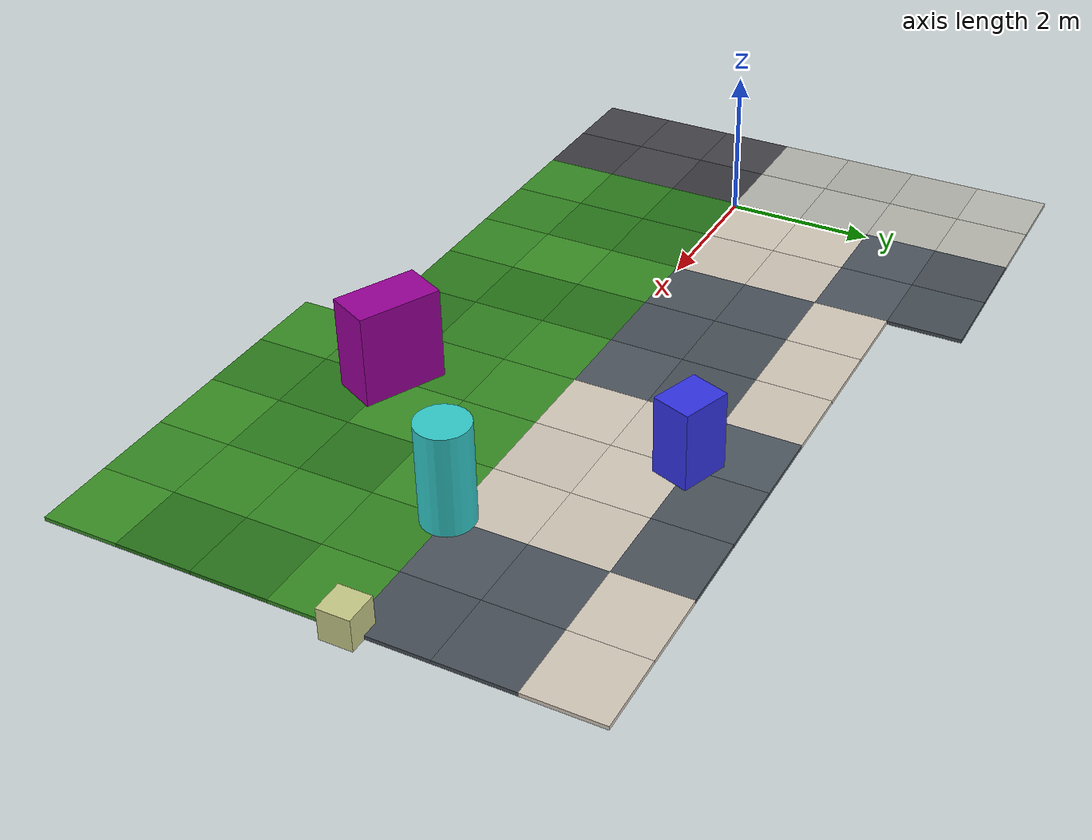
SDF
<sdf version="1.9">
 <world name="competition_world">
  <model name="t_06_15">
   <static>true</static>
   <pose>5.500 -3.500 0.025 0 0 0</pose>
   <link name="link">
    <collision name="c"><geometry><box><size>1.00 1.00 0.05</size></box></geometry></collision>
    <visual name="v">
     <geometry><box><size>1.00 1.00 0.05</size></box></geometry>
     <material>
      <ambient>0.219 0.553 0.143 1</ambient>
      <diffuse>0.219 0.553 0.143 1</diffuse>
      <specular>0.060 0.060 0.060 1</specular>
     </material>
    </visual>
   </link>
  </model>
  <model name="t_06_16">
   <static>true</static>
   <pose>6.500 -3.500 0.025 0 0 0</pose>
   <link name="link">
    <collision name="c"><geometry><box><size>1.00 1.00 0.05</size></box></geometry></collision>
    <visual name="v">
     <geometry><box><size>1.00 1.00 0.05</size></box></geometry>
     <material>
      <ambient>0.176 0.489 0.116 1</ambient>
      <diffuse>0.176 0.489 0.116 1</diffuse>
      <specular>0.060 0.060 0.060 1</specular>
     </material>
    </visual>
   </link>
  </model>
  <model name="t_06_17">
   <static>true</static>
   <pose>7.500 -3.500 0.025 0 0 0</pose>
   <link name="link">
    <collision name="c"><geometry><box><size>1.00 1.00 0.05</size></box></geometry></collision>
    <visual name="v">
     <geometry><box><size>1.00 1.00 0.05</size></box></geometry>
     <material>
      <ambient>0.223 0.560 0.146 1</ambient>
      <diffuse>0.223 0.560 0.146 1</diffuse>
      <specular>0.060 0.060 0.060 1</specular>
     </material>
    </visual>
   </link>
  </model>
  <model name="t_06_18">
   <static>true</static>
   <pose>8.500 -3.500 0.025 0 0 0</pose>
   <link name="link">
    <collision name="c"><geometry><box><size>1.00 1.00 0.05</size></box></geometry></collision>
    <visual name="v">
     <geometry><box><size>1.00 1.00 0.05</size></box></geometry>
     <material>
      <ambient>0.212 0.543 0.139 1</ambient>
      <diffuse>0.212 0.543 0.139 1</diffuse>
      <specular>0.060 0.060 0.060 1</specular>
     </material>
    </visual>
   </link>
  </model>
  <model name="t_06_19">
   <static>true</static>
   <pose>9.500 -3.500 0.025 0 0 0</pose>
   <link name="link">
    <collision name="c"><geometry><box><size>1.00 1.00 0.05</size></box></geometry></collision>
    <visual name="v">
     <geometry><box><size>1.00 1.00 0.05</size></box></geometry>
     <material>
      <ambient>0.228 0.566 0.149 1</ambient>
      <diffuse>0.228 0.566 0.149 1</diffuse>
      <specular>0.060 0.060 0.060 1</specular>
     </material>
    </visual>
   </link>
  </model>
  <model name="t_07_08">
   <static>true</static>
   <pose>-1.500 -2.500 0.025 0 0 0</pose>
   <link name="link">
    <collision name="c"><geometry><box><size>1.00 1.00 0.05</size></box></geometry></collision>
    <visual name="v">
     <geometry><box><size>1.00 1.00 0.05</size></box></geometry>
     <material>
      <ambient>0.260 0.260 0.280 1</ambient>
      <diffuse>0.260 0.260 0.280 1</diffuse>
      <specular>0.060 0.060 0.060 1</specular>
     </material>
    </visual>
   </link>
  </model>
  <model name="t_07_09">
   <static>true</static>
   <pose>-0.500 -2.500 0.025 0 0 0</pose>
   <link name="link">
    <collision name="c"><geometry><box><size>1.00 1.00 0.05</size></box></geometry></collision>
    <visual name="v">
     <geometry><box><size>1.00 1.00 0.05</size></box></geometry>
     <material>
      <ambient>0.239 0.239 0.259 1</ambient>
      <diffuse>0.239 0.239 0.259 1</diffuse>
      <specular>0.060 0.060 0.060 1</specular>
     </material>
    </visual>
   </link>
  </model>
  <model name="t_07_10">
   <static>true</static>
   <pose>0.500 -2.500 0.025 0 0 0</pose>
   <link name="link">
    <collision name="c"><geometry><box><size>1.00 1.00 0.05</size></box></geometry></collision>
    <visual name="v">
     <geometry><box><size>1.00 1.00 0.05</size></box></geometry>
     <material>
      <ambient>0.210 0.540 0.137 1</ambient>
      <diffuse>0.210 0.540 0.137 1</diffuse>
      <specular>0.060 0.060 0.060 1</specular>
     </material>
    </visual>
   </link>
  </model>
  <model name="t_07_11">
   <static>true</static>
   <pose>1.500 -2.500 0.025 0 0 0</pose>
   <link name="link">
    <collision name="c"><geometry><box><size>1.00 1.00 0.05</size></box></geometry></collision>
    <visual name="v">
     <geometry><box><size>1.00 1.00 0.05</size></box></geometry>
     <material>
      <ambient>0.195 0.517 0.128 1</ambient>
      <diffuse>0.195 0.517 0.128 1</diffuse>
      <specular>0.060 0.060 0.060 1</specular>
     </material>
    </visual>
   </link>
  </model>
  <model name="t_07_12">
   <static>true</static>
   <pose>2.500 -2.500 0.025 0 0 0</pose>
   <link name="link">
    <collision name="c"><geometry><box><size>1.00 1.00 0.05</size></box></geometry></collision>
    <visual name="v">
     <geometry><box><size>1.00 1.00 0.05</size></box></geometry>
     <material>
      <ambient>0.207 0.535 0.135 1</ambient>
      <diffuse>0.207 0.535 0.135 1</diffuse>
      <specular>0.060 0.060 0.060 1</specular>
     </material>
    </visual>
   </link>
  </model>
  <model name="t_07_13">
   <static>true</static>
   <pose>3.500 -2.500 0.025 0 0 0</pose>
   <link name="link">
    <collision name="c"><geometry><box><size>1.00 1.00 0.05</size></box></geometry></collision>
    <visual name="v">
     <geometry><box><size>1.00 1.00 0.05</size></box></geometry>
     <material>
      <ambient>0.175 0.487 0.115 1</ambient>
      <diffuse>0.175 0.487 0.115 1</diffuse>
      <specular>0.060 0.060 0.060 1</specular>
     </material>
    </visual>
   </link>
  </model>
  <model name="t_07_14">
   <static>true</static>
   <pose>4.500 -2.500 0.025 0 0 0</pose>
   <link name="link">
    <collision name="c"><geometry><box><size>1.00 1.00 0.05</size></box></geometry></collision>
    <visual name="v">
     <geometry><box><size>1.00 1.00 0.05</size></box></geometry>
     <material>
      <ambient>0.156 0.459 0.104 1</ambient>
      <diffuse>0.156 0.459 0.104 1</diffuse>
      <specular>0.060 0.060 0.060 1</specular>
     </material>
    </visual>
   </link>
  </model>
  <model name="t_07_15">
   <static>true</static>
   <pose>5.500 -2.500 0.025 0 0 0</pose>
   <link name="link">
    <collision name="c"><geometry><box><size>1.00 1.00 0.05</size></box></geometry></collision>
    <visual name="v">
     <geometry><box><size>1.00 1.00 0.05</size></box></geometry>
     <material>
      <ambient>0.204 0.531 0.134 1</ambient>
      <diffuse>0.204 0.531 0.134 1</diffuse>
      <specular>0.060 0.060 0.060 1</specular>
     </material>
    </visual>
   </link>
  </model>
  <model name="t_07_16">
   <static>true</static>
   <pose>6.500 -2.500 0.025 0 0 0</pose>
   <link name="link">
    <collision name="c"><geometry><box><size>1.00 1.00 0.05</size></box></geometry></collision>
    <visual name="v">
     <geometry><box><size>1.00 1.00 0.05</size></box></geometry>
     <material>
      <ambient>0.162 0.467 0.107 1</ambient>
      <diffuse>0.162 0.467 0.107 1</diffuse>
      <specular>0.060 0.060 0.060 1</specular>
     </material>
    </visual>
   </link>
  </model>
  <model name="t_07_17">
   <static>true</static>
   <pose>7.500 -2.500 0.025 0 0 0</pose>
   <link name="link">
    <collision name="c"><geometry><box><size>1.00 1.00 0.05</size></box></geometry></collision>
    <visual name="v">
     <geometry><box><size>1.00 1.00 0.05</size></box></geometry>
     <material>
      <ambient>0.179 0.493 0.118 1</ambient>
      <diffuse>0.179 0.493 0.118 1</diffuse>
      <specular>0.060 0.060 0.060 1</specular>
     </material>
    </visual>
   </link>
  </model>
  <model name="t_07_18">
   <static>true</static>
   <pose>8.500 -2.500 0.025 0 0 0</pose>
   <link name="link">
    <collision name="c"><geometry><box><size>1.00 1.00 0.05</size></box></geometry></collision>
    <visual name="v">
     <geometry><box><size>1.00 1.00 0.05</size></box></geometry>
     <material>
      <ambient>0.213 0.544 0.139 1</ambient>
      <diffuse>0.213 0.544 0.139 1</diffuse>
      <specular>0.060 0.060 0.060 1</specular>
     </material>
    </visual>
   </link>
  </model>
  <model name="t_07_19">
   <static>true</static>
   <pose>9.500 -2.500 0.025 0 0 0</pose>
   <link name="link">
    <collision name="c"><geometry><box><size>1.00 1.00 0.05</size></box></geometry></collision>
    <visual name="v">
     <geometry><box><size>1.00 1.00 0.05</size></box></geometry>
     <material>
      <ambient>0.154 0.456 0.102 1</ambient>
      <diffuse>0.154 0.456 0.102 1</diffuse>
      <specular>0.060 0.060 0.060 1</specular>
     </material>
    </visual>
   </link>
  </model>
  <model name="t_08_08">
   <static>true</static>
   <pose>-1.500 -1.500 0.025 0 0 0</pose>
   <link name="link">
    <collision name="c"><geometry><box><size>1.00 1.00 0.05</size></box></geometry></collision>
    <visual name="v">
     <geometry><box><size>1.00 1.00 0.05</size></box></geometry>
     <material>
      <ambient>0.260 0.260 0.280 1</ambient>
      <diffuse>0.260 0.260 0.280 1</diffuse>
      <specular>0.060 0.060 0.060 1</specular>
     </material>
    </visual>
   </link>
  </model>
  <model name="t_08_09">
   <static>true</static>
   <pose>-0.500 -1.500 0.025 0 0 0</pose>
   <link name="link">
    <collision name="c"><geometry><box><size>1.00 1.00 0.05</size></box></geometry></collision>
    <visual name="v">
     <geometry><box><size>1.00 1.00 0.05</size></box></geometry>
     <material>
      <ambient>0.260 0.260 0.280 1</ambient>
      <diffuse>0.260 0.260 0.280 1</diffuse>
      <specular>0.060 0.060 0.060 1</specular>
     </material>
    </visual>
   </link>
  </model>
  <model name="t_08_10">
   <static>true</static>
   <pose>0.500 -1.500 0.025 0 0 0</pose>
   <link name="link">
    <collision name="c"><geometry><box><size>1.00 1.00 0.05</size></box></geometry></collision>
    <visual name="v">
     <geometry><box><size>1.00 1.00 0.05</size></box></geometry>
     <material>
      <ambient>0.172 0.483 0.114 1</ambient>
      <diffuse>0.172 0.483 0.114 1</diffuse>
      <specular>0.060 0.060 0.060 1</specular>
     </material>
    </visual>
   </link>
  </model>
  <model name="t_08_11">
   <static>true</static>
   <pose>1.500 -1.500 0.025 0 0 0</pose>
   <link name="link">
    <collision name="c"><geometry><box><size>1.00 1.00 0.05</size></box></geometry></collision>
    <visual name="v">
     <geometry><box><size>1.00 1.00 0.05</size></box></geometry>
     <material>
      <ambient>0.163 0.469 0.108 1</ambient>
      <diffuse>0.163 0.469 0.108 1</diffuse>
      <specular>0.060 0.060 0.060 1</specular>
     </material>
    </visual>
   </link>
  </model>
  <model name="t_08_12">
   <static>true</static>
   <pose>2.500 -1.500 0.025 0 0 0</pose>
   <link name="link">
    <collision name="c"><geometry><box><size>1.00 1.00 0.05</size></box></geometry></collision>
    <visual name="v">
     <geometry><box><size>1.00 1.00 0.05</size></box></geometry>
     <material>
      <ambient>0.228 0.566 0.148 1</ambient>
      <diffuse>0.228 0.566 0.148 1</diffuse>
      <specular>0.060 0.060 0.060 1</specular>
     </material>
    </visual>
   </link>
  </model>
  <model name="t_08_13">
   <static>true</static>
   <pose>3.500 -1.500 0.025 0 0 0</pose>
   <link name="link">
    <collision name="c"><geometry><box><size>1.00 1.00 0.05</size></box></geometry></collision>
    <visual name="v">
     <geometry><box><size>1.00 1.00 0.05</size></box></geometry>
     <material>
      <ambient>0.155 0.457 0.103 1</ambient>
      <diffuse>0.155 0.457 0.103 1</diffuse>
      <specular>0.060 0.060 0.060 1</specular>
     </material>
    </visual>
   </link>
  </model>
  <model name="t_08_14">
   <static>true</static>
   <pose>4.500 -1.500 0.025 0 0 0</pose>
   <link name="link">
    <collision name="c"><geometry><box><size>1.00 1.00 0.05</size></box></geometry></collision>
    <visual name="v">
     <geometry><box><size>1.00 1.00 0.05</size></box></geometry>
     <material>
      <ambient>0.191 0.512 0.126 1</ambient>
      <diffuse>0.191 0.512 0.126 1</diffuse>
      <specular>0.060 0.060 0.060 1</specular>
     </material>
    </visual>
   </link>
  </model>
  <model name="t_08_15">
   <static>true</static>
   <pose>5.500 -1.500 0.025 0 0 0</pose>
   <link name="link">
    <collision name="c"><geometry><box><size>1.00 1.00 0.05</size></box></geometry></collision>
    <visual name="v">
     <geometry><box><size>1.00 1.00 0.05</size></box></geometry>
     <material>
      <ambient>0.200 0.525 0.131 1</ambient>
      <diffuse>0.200 0.525 0.131 1</diffuse>
      <specular>0.060 0.060 0.060 1</specular>
     </material>
    </visual>
   </link>
  </model>
  <model name="t_08_16">
   <static>true</static>
   <pose>6.500 -1.500 0.025 0 0 0</pose>
   <link name="link">
    <collision name="c"><geometry><box><size>1.00 1.00 0.05</size></box></geometry></collision>
    <visual name="v">
     <geometry><box><size>1.00 1.00 0.05</size></box></geometry>
     <material>
      <ambient>0.226 0.565 0.148 1</ambient>
      <diffuse>0.226 0.565 0.148 1</diffuse>
      <specular>0.060 0.060 0.060 1</specular>
     </material>
    </visual>
   </link>
  </model>
  <model name="t_08_17">
   <static>true</static>
   <pose>7.500 -1.500 0.025 0 0 0</pose>
   <link name="link">
    <collision name="c"><geometry><box><size>1.00 1.00 0.05</size></box></geometry></collision>
    <visual name="v">
     <geometry><box><size>1.00 1.00 0.05</size></box></geometry>
     <material>
      <ambient>0.157 0.460 0.104 1</ambient>
      <diffuse>0.157 0.460 0.104 1</diffuse>
      <specular>0.060 0.060 0.060 1</specular>
     </material>
    </visual>
   </link>
  </model>
  <model name="t_08_18">
   <static>true</static>
   <pose>8.500 -1.500 0.025 0 0 0</pose>
   <link name="link">
    <collision name="c"><geometry><box><size>1.00 1.00 0.05</size></box></geometry></collision>
    <visual name="v">
     <geometry><box><size>1.00 1.00 0.05</size></box></geometry>
     <material>
      <ambient>0.206 0.534 0.135 1</ambient>
      <diffuse>0.206 0.534 0.135 1</diffuse>
      <specular>0.060 0.060 0.060 1</specular>
     </material>
    </visual>
   </link>
  </model>
  <model name="t_08_19">
   <static>true</static>
   <pose>9.500 -1.500 0.025 0 0 0</pose>
   <link name="link">
    <collision name="c"><geometry><box><size>1.00 1.00 0.05</size></box></geometry></collision>
    <visual name="v">
     <geometry><box><size>1.00 1.00 0.05</size></box></geometry>
     <material>
      <ambient>0.156 0.459 0.104 1</ambient>
      <diffuse>0.156 0.459 0.104 1</diffuse>
      <specular>0.060 0.060 0.060 1</specular>
     </material>
    </visual>
   </link>
  </model>
  <model name="t_09_08">
   <static>true</static>
   <pose>-1.500 -0.500 0.025 0 0 0</pose>
   <link name="link">
    <collision name="c"><geometry><box><size>1.00 1.00 0.05</size></box></geometry></collision>
    <visual name="v">
     <geometry><box><size>1.00 1.00 0.05</size></box></geometry>
     <material>
      <ambient>0.260 0.260 0.280 1</ambient>
      <diffuse>0.260 0.260 0.280 1</diffuse>
      <specular>0.060 0.060 0.060 1</specular>
     </material>
    </visual>
   </link>
  </model>
  <model name="t_09_09">
   <static>true</static>
   <pose>-0.500 -0.500 0.025 0 0 0</pose>
   <link name="link">
    <collision name="c"><geometry><box><size>1.00 1.00 0.05</size></box></geometry></collision>
    <visual name="v">
     <geometry><box><size>1.00 1.00 0.05</size></box></geometry>
     <material>
      <ambient>0.224 0.224 0.244 1</ambient>
      <diffuse>0.224 0.224 0.244 1</diffuse>
      <specular>0.060 0.060 0.060 1</specular>
     </material>
    </visual>
   </link>
  </model>
  <model name="t_09_10">
   <static>true</static>
   <pose>0.500 -0.500 0.025 0 0 0</pose>
   <link name="link">
    <collision name="c"><geometry><box><size>1.00 1.00 0.05</size></box></geometry></collision>
    <visual name="v">
     <geometry><box><size>1.00 1.00 0.05</size></box></geometry>
     <material>
      <ambient>0.150 0.451 0.100 1</ambient>
      <diffuse>0.150 0.451 0.100 1</diffuse>
      <specular>0.060 0.060 0.060 1</specular>
     </material>
    </visual>
   </link>
  </model>
  <model name="t_09_11">
   <static>true</static>
   <pose>1.500 -0.500 0.025 0 0 0</pose>
   <link name="link">
    <collision name="c"><geometry><box><size>1.00 1.00 0.05</size></box></geometry></collision>
    <visual name="v">
     <geometry><box><size>1.00 1.00 0.05</size></box></geometry>
     <material>
      <ambient>0.153 0.454 0.102 1</ambient>
      <diffuse>0.153 0.454 0.102 1</diffuse>
      <specular>0.060 0.060 0.060 1</specular>
     </material>
    </visual>
   </link>
  </model>
  <model name="t_09_12">
   <static>true</static>
   <pose>2.500 -0.500 0.025 0 0 0</pose>
   <link name="link">
    <collision name="c"><geometry><box><size>1.00 1.00 0.05</size></box></geometry></collision>
    <visual name="v">
     <geometry><box><size>1.00 1.00 0.05</size></box></geometry>
     <material>
      <ambient>0.212 0.544 0.139 1</ambient>
      <diffuse>0.212 0.544 0.139 1</diffuse>
      <specular>0.060 0.060 0.060 1</specular>
     </material>
    </visual>
   </link>
  </model>
  <model name="t_09_13">
   <static>true</static>
   <pose>3.500 -0.500 0.025 0 0 0</pose>
   <link name="link">
    <collision name="c"><geometry><box><size>1.00 1.00 0.05</size></box></geometry></collision>
    <visual name="v">
     <geometry><box><size>1.00 1.00 0.05</size></box></geometry>
     <material>
      <ambient>0.153 0.455 0.102 1</ambient>
      <diffuse>0.153 0.455 0.102 1</diffuse>
      <specular>0.060 0.060 0.060 1</specular>
     </material>
    </visual>
   </link>
  </model>
  <model name="t_09_14">
   <static>true</static>
   <pose>4.500 -0.500 0.025 0 0 0</pose>
   <link name="link">
    <collision name="c"><geometry><box><size>1.00 1.00 0.05</size></box></geometry></collision>
    <visual name="v">
     <geometry><box><size>1.00 1.00 0.05</size></box></geometry>
     <material>
      <ambient>0.213 0.544 0.139 1</ambient>
      <diffuse>0.213 0.544 0.139 1</diffuse>
      <specular>0.060 0.060 0.060 1</specular>
     </material>
    </visual>
   </link>
  </model>
  <model name="t_09_15">
   <static>true</static>
   <pose>5.500 -0.500 0.025 0 0 0</pose>
   <link name="link">
    <collision name="c"><geometry><box><size>1.00 1.00 0.05</size></box></geometry></collision>
    <visual name="v">
     <geometry><box><size>1.00 1.00 0.05</size></box></geometry>
     <material>
      <ambient>0.215 0.547 0.140 1</ambient>
      <diffuse>0.215 0.547 0.140 1</diffuse>
      <specular>0.060 0.060 0.060 1</specular>
     </material>
    </visual>
   </link>
  </model>
  <model name="t_09_16">
   <static>true</static>
   <pose>6.500 -0.500 0.025 0 0 0</pose>
   <link name="link">
    <collision name="c"><geometry><box><size>1.00 1.00 0.05</size></box></geometry></collision>
    <visual name="v">
     <geometry><box><size>1.00 1.00 0.05</size></box></geometry>
     <material>
      <ambient>0.215 0.548 0.141 1</ambient>
      <diffuse>0.215 0.548 0.141 1</diffuse>
      <specular>0.060 0.060 0.060 1</specular>
     </material>
    </visual>
   </link>
  </model>
  <model name="t_09_17">
   <static>true</static>
   <pose>7.500 -0.500 0.025 0 0 0</pose>
   <link name="link">
    <collision name="c"><geometry><box><size>1.00 1.00 0.05</size></box></geometry></collision>
    <visual name="v">
     <geometry><box><size>1.00 1.00 0.05</size></box></geometry>
     <material>
      <ambient>0.225 0.562 0.147 1</ambient>
      <diffuse>0.225 0.562 0.147 1</diffuse>
      <specular>0.060 0.060 0.060 1</specular>
     </material>
    </visual>
   </link>
  </model>
  <model name="t_09_18">
   <static>true</static>
   <pose>8.500 -0.500 0.025 0 0 0</pose>
   <link name="link">
    <collision name="c"><geometry><box><size>1.00 1.00 0.05</size></box></geometry></collision>
    <visual name="v">
     <geometry><box><size>1.00 1.00 0.05</size></box></geometry>
     <material>
      <ambient>0.201 0.526 0.132 1</ambient>
      <diffuse>0.201 0.526 0.132 1</diffuse>
      <specular>0.060 0.060 0.060 1</specular>
     </material>
    </visual>
   </link>
  </model>
  <model name="t_09_19">
   <static>true</static>
   <pose>9.500 -0.500 0.025 0 0 0</pose>
   <link name="link">
    <collision name="c"><geometry><box><size>1.00 1.00 0.05</size></box></geometry></collision>
    <visual name="v">
     <geometry><box><size>1.00 1.00 0.05</size></box></geometry>
     <material>
      <ambient>0.216 0.549 0.141 1</ambient>
      <diffuse>0.216 0.549 0.141 1</diffuse>
      <specular>0.060 0.060 0.060 1</specular>
     </material>
    </visual>
   </link>
  </model>
  <model name="t_10_08">
   <static>true</static>
   <pose>-1.500 0.500 0.025 0 0 0</pose>
   <link name="link">
    <collision name="c"><geometry><box><size>1.00 1.00 0.05</size></box></geometry></collision>
    <visual name="v">
     <geometry><box><size>1.00 1.00 0.05</size></box></geometry>
     <material>
      <ambient>0.709 0.709 0.679 1</ambient>
      <diffuse>0.709 0.709 0.679 1</diffuse>
      <specular>0.060 0.060 0.060 1</specular>
     </material>
    </visual>
   </link>
  </model>
  <model name="t_10_09">
   <static>true</static>
   <pose>-0.500 0.500 0.025 0 0 0</pose>
   <link name="link">
    <collision name="c"><geometry><box><size>1.00 1.00 0.05</size></box></geometry></collision>
    <visual name="v">
     <geometry><box><size>1.00 1.00 0.05</size></box></geometry>
     <material>
      <ambient>0.712 0.712 0.682 1</ambient>
      <diffuse>0.712 0.712 0.682 1</diffuse>
      <specular>0.060 0.060 0.060 1</specular>
     </material>
    </visual>
   </link>
  </model>
  <model name="t_10_10">
   <static>true</static>
   <pose>0.500 0.500 0.025 0 0 0</pose>
   <link name="link">
    <collision name="c"><geometry><box><size>1.00 1.00 0.05</size></box></geometry></collision>
    <visual name="v">
     <geometry><box><size>1.00 1.00 0.05</size></box></geometry>
     <material>
      <ambient>0.831 0.789 0.731 1</ambient>
      <diffuse>0.831 0.789 0.731 1</diffuse>
      <specular>0.060 0.060 0.060 1</specular>
     </material>
    </visual>
   </link>
  </model>
  <model name="t_10_11">
   <static>true</static>
   <pose>1.500 0.500 0.025 0 0 0</pose>
   <link name="link">
    <collision name="c"><geometry><box><size>1.00 1.00 0.05</size></box></geometry></collision>
    <visual name="v">
     <geometry><box><size>1.00 1.00 0.05</size></box></geometry>
     <material>
      <ambient>0.813 0.772 0.715 1</ambient>
      <diffuse>0.813 0.772 0.715 1</diffuse>
      <specular>0.060 0.060 0.060 1</specular>
     </material>
    </visual>
   </link>
  </model>
  <model name="t_10_12">
   <static>true</static>
   <pose>2.500 0.500 0.025 0 0 0</pose>
   <link name="link">
    <collision name="c"><geometry><box><size>1.00 1.00 0.05</size></box></geometry></collision>
    <visual name="v">
     <geometry><box><size>1.00 1.00 0.05</size></box></geometry>
     <material>
      <ambient>0.295 0.328 0.361 1</ambient>
      <diffuse>0.295 0.328 0.361 1</diffuse>
      <specular>0.060 0.060 0.060 1</specular>
     </material>
    </visual>
   </link>
  </model>
  <model name="t_10_13">
   <static>true</static>
   <pose>3.500 0.500 0.025 0 0 0</pose>
   <link name="link">
    <collision name="c"><geometry><box><size>1.00 1.00 0.05</size></box></geometry></collision>
    <visual name="v">
     <geometry><box><size>1.00 1.00 0.05</size></box></geometry>
     <material>
      <ambient>0.280 0.311 0.343 1</ambient>
      <diffuse>0.280 0.311 0.343 1</diffuse>
      <specular>0.060 0.060 0.060 1</specular>
     </material>
    </visual>
   </link>
  </model>
  <model name="t_10_14">
   <static>true</static>
   <pose>4.500 0.500 0.025 0 0 0</pose>
   <link name="link">
    <collision name="c"><geometry><box><size>1.00 1.00 0.05</size></box></geometry></collision>
    <visual name="v">
     <geometry><box><size>1.00 1.00 0.05</size></box></geometry>
     <material>
      <ambient>0.301 0.335 0.368 1</ambient>
      <diffuse>0.301 0.335 0.368 1</diffuse>
      <specular>0.060 0.060 0.060 1</specular>
     </material>
    </visual>
   </link>
  </model>
  <model name="t_10_15">
   <static>true</static>
   <pose>5.500 0.500 0.025 0 0 0</pose>
   <link name="link">
    <collision name="c"><geometry><box><size>1.00 1.00 0.05</size></box></geometry></collision>
    <visual name="v">
     <geometry><box><size>1.00 1.00 0.05</size></box></geometry>
     <material>
      <ambient>0.838 0.796 0.737 1</ambient>
      <diffuse>0.838 0.796 0.737 1</diffuse>
      <specular>0.060 0.060 0.060 1</specular>
     </material>
    </visual>
   </link>
  </model>
  <model name="t_10_16">
   <static>true</static>
   <pose>6.500 0.500 0.025 0 0 0</pose>
   <link name="link">
    <collision name="c"><geometry><box><size>1.00 1.00 0.05</size></box></geometry></collision>
    <visual name="v">
     <geometry><box><size>1.00 1.00 0.05</size></box></geometry>
     <material>
      <ambient>0.815 0.775 0.718 1</ambient>
      <diffuse>0.815 0.775 0.718 1</diffuse>
      <specular>0.060 0.060 0.060 1</specular>
     </material>
    </visual>
   </link>
  </model>
  <model name="t_10_17">
   <static>true</static>
   <pose>7.500 0.500 0.025 0 0 0</pose>
   <link name="link">
    <collision name="c"><geometry><box><size>1.00 1.00 0.05</size></box></geometry></collision>
    <visual name="v">
     <geometry><box><size>1.00 1.00 0.05</size></box></geometry>
     <material>
      <ambient>0.826 0.785 0.727 1</ambient>
      <diffuse>0.826 0.785 0.727 1</diffuse>
      <specular>0.060 0.060 0.060 1</specular>
     </material>
    </visual>
   </link>
  </model>
  <model name="t_10_18">
   <static>true</static>
   <pose>8.500 0.500 0.025 0 0 0</pose>
   <link name="link">
    <collision name="c"><geometry><box><size>1.00 1.00 0.05</size></box></geometry></collision>
    <visual name="v">
     <geometry><box><size>1.00 1.00 0.05</size></box></geometry>
     <material>
      <ambient>0.300 0.333 0.367 1</ambient>
      <diffuse>0.300 0.333 0.367 1</diffuse>
      <specular>0.060 0.060 0.060 1</specular>
     </material>
    </visual>
   </link>
  </model>
  <model name="t_10_19">
   <static>true</static>
   <pose>9.500 0.500 0.025 0 0 0</pose>
   <link name="link">
    <collision name="c"><geometry><box><size>1.00 1.00 0.05</size></box></geometry></collision>
    <visual name="v">
     <geometry><box><size>1.00 1.00 0.05</size></box></geometry>
     <material>
      <ambient>0.281 0.312 0.343 1</ambient>
      <diffuse>0.281 0.312 0.343 1</diffuse>
      <specular>0.060 0.060 0.060 1</specular>
     </material>
    </visual>
   </link>
  </model>
  <model name="t_11_08">
   <static>true</static>
   <pose>-1.500 1.500 0.025 0 0 0</pose>
   <link name="link">
    <collision name="c"><geometry><box><size>1.00 1.00 0.05</size></box></geometry></collision>
    <visual name="v">
     <geometry><box><size>1.00 1.00 0.05</size></box></geometry>
     <material>
      <ambient>0.691 0.691 0.661 1</ambient>
      <diffuse>0.691 0.691 0.661 1</diffuse>
      <specular>0.060 0.060 0.060 1</specular>
     </material>
    </visual>
   </link>
  </model>
  <model name="t_11_09">
   <static>true</static>
   <pose>-0.500 1.500 0.025 0 0 0</pose>
   <link name="link">
    <collision name="c"><geometry><box><size>1.00 1.00 0.05</size></box></geometry></collision>
    <visual name="v">
     <geometry><box><size>1.00 1.00 0.05</size></box></geometry>
     <material>
      <ambient>0.710 0.710 0.680 1</ambient>
      <diffuse>0.710 0.710 0.680 1</diffuse>
      <specular>0.060 0.060 0.060 1</specular>
     </material>
    </visual>
   </link>
  </model>
  <model name="t_11_10">
   <static>true</static>
   <pose>0.500 1.500 0.025 0 0 0</pose>
   <link name="link">
    <collision name="c"><geometry><box><size>1.00 1.00 0.05</size></box></geometry></collision>
    <visual name="v">
     <geometry><box><size>1.00 1.00 0.05</size></box></geometry>
     <material>
      <ambient>0.831 0.790 0.732 1</ambient>
      <diffuse>0.831 0.790 0.732 1</diffuse>
      <specular>0.060 0.060 0.060 1</specular>
     </material>
    </visual>
   </link>
  </model>
  <model name="t_11_11">
   <static>true</static>
   <pose>1.500 1.500 0.025 0 0 0</pose>
   <link name="link">
    <collision name="c"><geometry><box><size>1.00 1.00 0.05</size></box></geometry></collision>
    <visual name="v">
     <geometry><box><size>1.00 1.00 0.05</size></box></geometry>
     <material>
      <ambient>0.809 0.768 0.712 1</ambient>
      <diffuse>0.809 0.768 0.712 1</diffuse>
      <specular>0.060 0.060 0.060 1</specular>
     </material>
    </visual>
   </link>
  </model>
  <model name="t_11_12">
   <static>true</static>
   <pose>2.500 1.500 0.025 0 0 0</pose>
   <link name="link">
    <collision name="c"><geometry><box><size>1.00 1.00 0.05</size></box></geometry></collision>
    <visual name="v">
     <geometry><box><size>1.00 1.00 0.05</size></box></geometry>
     <material>
      <ambient>0.289 0.321 0.353 1</ambient>
      <diffuse>0.289 0.321 0.353 1</diffuse>
      <specular>0.060 0.060 0.060 1</specular>
     </material>
    </visual>
   </link>
  </model>
  <model name="t_11_13">
   <static>true</static>
   <pose>3.500 1.500 0.025 0 0 0</pose>
   <link name="link">
    <collision name="c"><geometry><box><size>1.00 1.00 0.05</size></box></geometry></collision>
    <visual name="v">
     <geometry><box><size>1.00 1.00 0.05</size></box></geometry>
     <material>
      <ambient>0.282 0.314 0.345 1</ambient>
      <diffuse>0.282 0.314 0.345 1</diffuse>
      <specular>0.060 0.060 0.060 1</specular>
     </material>
    </visual>
   </link>
  </model>
  <model name="t_11_14">
   <static>true</static>
   <pose>4.500 1.500 0.025 0 0 0</pose>
   <link name="link">
    <collision name="c"><geometry><box><size>1.00 1.00 0.05</size></box></geometry></collision>
    <visual name="v">
     <geometry><box><size>1.00 1.00 0.05</size></box></geometry>
     <material>
      <ambient>0.279 0.309 0.340 1</ambient>
      <diffuse>0.279 0.309 0.340 1</diffuse>
      <specular>0.060 0.060 0.060 1</specular>
     </material>
    </visual>
   </link>
  </model>
  <model name="t_11_15">
   <static>true</static>
   <pose>5.500 1.500 0.025 0 0 0</pose>
   <link name="link">
    <collision name="c"><geometry><box><size>1.00 1.00 0.05</size></box></geometry></collision>
    <visual name="v">
     <geometry><box><size>1.00 1.00 0.05</size></box></geometry>
     <material>
      <ambient>0.827 0.785 0.728 1</ambient>
      <diffuse>0.827 0.785 0.728 1</diffuse>
      <specular>0.060 0.060 0.060 1</specular>
     </material>
    </visual>
   </link>
  </model>
  <model name="t_11_16">
   <static>true</static>
   <pose>6.500 1.500 0.025 0 0 0</pose>
   <link name="link">
    <collision name="c"><geometry><box><size>1.00 1.00 0.05</size></box></geometry></collision>
    <visual name="v">
     <geometry><box><size>1.00 1.00 0.05</size></box></geometry>
     <material>
      <ambient>0.833 0.792 0.733 1</ambient>
      <diffuse>0.833 0.792 0.733 1</diffuse>
      <specular>0.060 0.060 0.060 1</specular>
     </material>
    </visual>
   </link>
  </model>
  <model name="t_11_17">
   <static>true</static>
   <pose>7.500 1.500 0.025 0 0 0</pose>
   <link name="link">
    <collision name="c"><geometry><box><size>1.00 1.00 0.05</size></box></geometry></collision>
    <visual name="v">
     <geometry><box><size>1.00 1.00 0.05</size></box></geometry>
     <material>
      <ambient>0.821 0.780 0.723 1</ambient>
      <diffuse>0.821 0.780 0.723 1</diffuse>
      <specular>0.060 0.060 0.060 1</specular>
     </material>
    </visual>
   </link>
  </model>
  <model name="t_11_18">
   <static>true</static>
   <pose>8.500 1.500 0.025 0 0 0</pose>
   <link name="link">
    <collision name="c"><geometry><box><size>1.00 1.00 0.05</size></box></geometry></collision>
    <visual name="v">
     <geometry><box><size>1.00 1.00 0.05</size></box></geometry>
     <material>
      <ambient>0.294 0.327 0.359 1</ambient>
      <diffuse>0.294 0.327 0.359 1</diffuse>
      <specular>0.060 0.060 0.060 1</specular>
     </material>
    </visual>
   </link>
  </model>
  <model name="t_11_19">
   <static>true</static>
   <pose>9.500 1.500 0.025 0 0 0</pose>
   <link name="link">
    <collision name="c"><geometry><box><size>1.00 1.00 0.05</size></box></geometry></collision>
    <visual name="v">
     <geometry><box><size>1.00 1.00 0.05</size></box></geometry>
     <material>
      <ambient>0.286 0.318 0.350 1</ambient>
      <diffuse>0.286 0.318 0.350 1</diffuse>
      <specular>0.060 0.060 0.060 1</specular>
     </material>
    </visual>
   </link>
  </model>
  <model name="t_12_08">
   <static>true</static>
   <pose>-1.500 2.500 0.025 0 0 0</pose>
   <link name="link">
    <collision name="c"><geometry><box><size>1.00 1.00 0.05</size></box></geometry></collision>
    <visual name="v">
     <geometry><box><size>1.00 1.00 0.05</size></box></geometry>
     <material>
      <ambient>0.705 0.705 0.675 1</ambient>
      <diffuse>0.705 0.705 0.675 1</diffuse>
      <specular>0.060 0.060 0.060 1</specular>
     </material>
    </visual>
   </link>
  </model>
  <model name="t_12_09">
   <static>true</static>
   <pose>-0.500 2.500 0.025 0 0 0</pose>
   <link name="link">
    <collision name="c"><geometry><box><size>1.00 1.00 0.05</size></box></geometry></collision>
    <visual name="v">
     <geometry><box><size>1.00 1.00 0.05</size></box></geometry>
     <material>
      <ambient>0.711 0.711 0.681 1</ambient>
      <diffuse>0.711 0.711 0.681 1</diffuse>
      <specular>0.060 0.060 0.060 1</specular>
     </material>
    </visual>
   </link>
  </model>
  <model name="t_12_10">
   <static>true</static>
   <pose>0.500 2.500 0.025 0 0 0</pose>
   <link name="link">
    <collision name="c"><geometry><box><size>1.00 1.00 0.05</size></box></geometry></collision>
    <visual name="v">
     <geometry><box><size>1.00 1.00 0.05</size></box></geometry>
     <material>
      <ambient>0.303 0.337 0.371 1</ambient>
      <diffuse>0.303 0.337 0.371 1</diffuse>
      <specular>0.060 0.060 0.060 1</specular>
     </material>
    </visual>
   </link>
  </model>
  <model name="t_12_11">
   <static>true</static>
   <pose>1.500 2.500 0.025 0 0 0</pose>
   <link name="link">
    <collision name="c"><geometry><box><size>1.00 1.00 0.05</size></box></geometry></collision>
    <visual name="v">
     <geometry><box><size>1.00 1.00 0.05</size></box></geometry>
     <material>
      <ambient>0.307 0.341 0.376 1</ambient>
      <diffuse>0.307 0.341 0.376 1</diffuse>
      <specular>0.060 0.060 0.060 1</specular>
     </material>
    </visual>
   </link>
  </model>
  <model name="t_12_12">
   <static>true</static>
   <pose>2.500 2.500 0.025 0 0 0</pose>
   <link name="link">
    <collision name="c"><geometry><box><size>1.00 1.00 0.05</size></box></geometry></collision>
    <visual name="v">
     <geometry><box><size>1.00 1.00 0.05</size></box></geometry>
     <material>
      <ambient>0.835 0.793 0.735 1</ambient>
      <diffuse>0.835 0.793 0.735 1</diffuse>
      <specular>0.060 0.060 0.060 1</specular>
     </material>
    </visual>
   </link>
  </model>
  <model name="t_12_13">
   <static>true</static>
   <pose>3.500 2.500 0.025 0 0 0</pose>
   <link name="link">
    <collision name="c"><geometry><box><size>1.00 1.00 0.05</size></box></geometry></collision>
    <visual name="v">
     <geometry><box><size>1.00 1.00 0.05</size></box></geometry>
     <material>
      <ambient>0.832 0.790 0.732 1</ambient>
      <diffuse>0.832 0.790 0.732 1</diffuse>
      <specular>0.060 0.060 0.060 1</specular>
     </material>
    </visual>
   </link>
  </model>
  <model name="t_12_14">
   <static>true</static>
   <pose>4.500 2.500 0.025 0 0 0</pose>
   <link name="link">
    <collision name="c"><geometry><box><size>1.00 1.00 0.05</size></box></geometry></collision>
    <visual name="v">
     <geometry><box><size>1.00 1.00 0.05</size></box></geometry>
     <material>
      <ambient>0.827 0.786 0.728 1</ambient>
      <diffuse>0.827 0.786 0.728 1</diffuse>
      <specular>0.060 0.060 0.060 1</specular>
     </material>
    </visual>
   </link>
  </model>
  <model name="t_12_15">
   <static>true</static>
   <pose>5.500 2.500 0.025 0 0 0</pose>
   <link name="link">
    <collision name="c"><geometry><box><size>1.00 1.00 0.05</size></box></geometry></collision>
    <visual name="v">
     <geometry><box><size>1.00 1.00 0.05</size></box></geometry>
     <material>
      <ambient>0.313 0.348 0.383 1</ambient>
      <diffuse>0.313 0.348 0.383 1</diffuse>
      <specular>0.060 0.060 0.060 1</specular>
     </material>
    </visual>
   </link>
  </model>
  <model name="t_12_16">
   <static>true</static>
   <pose>6.500 2.500 0.025 0 0 0</pose>
   <link name="link">
    <collision name="c"><geometry><box><size>1.00 1.00 0.05</size></box></geometry></collision>
    <visual name="v">
     <geometry><box><size>1.00 1.00 0.05</size></box></geometry>
     <material>
      <ambient>0.299 0.333 0.366 1</ambient>
      <diffuse>0.299 0.333 0.366 1</diffuse>
      <specular>0.060 0.060 0.060 1</specular>
     </material>
    </visual>
   </link>
  </model>
  <model name="t_12_17">
   <static>true</static>
   <pose>7.500 2.500 0.025 0 0 0</pose>
   <link name="link">
    <collision name="c"><geometry><box><size>1.00 1.00 0.05</size></box></geometry></collision>
    <visual name="v">
     <geometry><box><size>1.00 1.00 0.05</size></box></geometry>
     <material>
      <ambient>0.296 0.328 0.361 1</ambient>
      <diffuse>0.296 0.328 0.361 1</diffuse>
      <specular>0.060 0.060 0.060 1</specular>
     </material>
    </visual>
   </link>
  </model>
  <model name="t_12_18">
   <static>true</static>
   <pose>8.500 2.500 0.025 0 0 0</pose>
   <link name="link">
    <collision name="c"><geometry><box><size>1.00 1.00 0.05</size></box></geometry></collision>
    <visual name="v">
     <geometry><box><size>1.00 1.00 0.05</size></box></geometry>
     <material>
      <ambient>0.837 0.795 0.736 1</ambient>
      <diffuse>0.837 0.795 0.736 1</diffuse>
      <specular>0.060 0.060 0.060 1</specular>
     </material>
    </visual>
   </link>
  </model>
  <model name="t_12_19">
   <static>true</static>
   <pose>9.500 2.500 0.025 0 0 0</pose>
   <link name="link">
    <collision name="c"><geometry><box><size>1.00 1.00 0.05</size></box></geometry></collision>
    <visual name="v">
     <geometry><box><size>1.00 1.00 0.05</size></box></geometry>
     <material>
      <ambient>0.836 0.794 0.735 1</ambient>
      <diffuse>0.836 0.794 0.735 1</diffuse>
      <specular>0.060 0.060 0.060 1</specular>
     </material>
    </visual>
   </link>
  </model>
  <model name="t_13_08">
   <static>true</static>
   <pose>-1.500 3.500 0.025 0 0 0</pose>
   <link name="link">
    <collision name="c"><geometry><box><size>1.00 1.00 0.05</size></box></geometry></collision>
    <visual name="v">
     <geometry><box><size>1.00 1.00 0.05</size></box></geometry>
     <material>
      <ambient>0.732 0.732 0.702 1</ambient>
      <diffuse>0.732 0.732 0.702 1</diffuse>
      <specular>0.060 0.060 0.060 1</specular>
     </material>
    </visual>
   </link>
  </model>
  <model name="t_13_09">
   <static>true</static>
   <pose>-0.500 3.500 0.025 0 0 0</pose>
   <link name="link">
    <collision name="c"><geometry><box><size>1.00 1.00 0.05</size></box></geometry></collision>
    <visual name="v">
     <geometry><box><size>1.00 1.00 0.05</size></box></geometry>
     <material>
      <ambient>0.721 0.721 0.691 1</ambient>
      <diffuse>0.721 0.721 0.691 1</diffuse>
      <specular>0.060 0.060 0.060 1</specular>
     </material>
    </visual>
   </link>
  </model>
  <model name="t_13_10">
   <static>true</static>
   <pose>0.500 3.500 0.025 0 0 0</pose>
   <link name="link">
    <collision name="c"><geometry><box><size>1.00 1.00 0.05</size></box></geometry></collision>
    <visual name="v">
     <geometry><box><size>1.00 1.00 0.05</size></box></geometry>
     <material>
      <ambient>0.271 0.301 0.331 1</ambient>
      <diffuse>0.271 0.301 0.331 1</diffuse>
      <specular>0.060 0.060 0.060 1</specular>
     </material>
    </visual>
   </link>
  </model>
  <model name="t_13_11">
   <static>true</static>
   <pose>1.500 3.500 0.025 0 0 0</pose>
   <link name="link">
    <collision name="c"><geometry><box><size>1.00 1.00 0.05</size></box></geometry></collision>
    <visual name="v">
     <geometry><box><size>1.00 1.00 0.05</size></box></geometry>
     <material>
      <ambient>0.274 0.305 0.335 1</ambient>
      <diffuse>0.274 0.305 0.335 1</diffuse>
      <specular>0.060 0.060 0.060 1</specular>
     </material>
    </visual>
   </link>
  </model>
  <model name="lm_09">
   <static>true</static>
   <pose>8.00 0.00 0.68 0 0 0</pose>
   <link name="link">
    <collision name="c">
     <geometry>
      <cylinder><radius>0.33137425287362204</radius><length>1.3678681694549075</length></cylinder>
     </geometry>
    </collision>
    <visual name="v">
     <geometry>
      <cylinder><radius>0.33137425287362204</radius><length>1.3678681694549075</length></cylinder>
     </geometry>
     <material>
      <ambient>0.200 0.800 0.800 1</ambient>
      <diffuse>0.200 0.800 0.800 1</diffuse>
      <specular>0.400 0.400 0.400 1</specular>
     </material>
    </visual>
   </link>
  </model>
  <model name="lm_16">
   <static>true</static>
   <pose>6.00 2.00 0.54 0 0 1.234</pose>
   <link name="link">
    <collision name="c"><geometry><box><size>0.52 0.65 1.08</size></box></geometry></collision>
    <visual name="v">
     <geometry><box><size>0.52 0.65 1.08</size></box></geometry>
     <material>
      <ambient>0.200 0.200 0.900 1</ambient>
      <diffuse>0.200 0.200 0.900 1</diffuse>
      <specular>0.300 0.300 0.300 1</specular>
     </material>
    </visual>
   </link>
  </model>
  <model name="lm_18">
   <static>true</static>
   <pose>6.00 -2.00 0.64 0 0 1.125</pose>
   <link name="link">
    <collision name="c"><geometry><box><size>0.61 1.11 1.28</size></box></geometry></collision>
    <visual name="v">
     <geometry><box><size>0.61 1.11 1.28</size></box></geometry>
     <material>
      <ambient>0.600 0.000 0.600 1</ambient>
      <diffuse>0.600 0.000 0.600 1</diffuse>
      <specular>0.300 0.300 0.300 1</specular>
     </material>
    </visual>
   </link>
  </model>
  <model name="deco_02">
   <static>true</static>
   <pose>10.00 0.00 0.21 0 0 0.000</pose>
   <link name="link">
    <collision name="c"><geometry><box><size>0.42 0.42 0.42</size></box></geometry></collision>
    <visual name="v">
     <geometry><box><size>0.42 0.42 0.42</size></box></geometry>
     <material>
      <ambient>0.788 0.797 0.534 1</ambient>
      <diffuse>0.788 0.797 0.534 1</diffuse>
      <specular>0.300 0.300 0.300 1</specular>
     </material>
    </visual>
   </link>
  </model>
  <model name="down_cam_rig">
   <static>true</static>
   <pose>0 0 4.00 0 0 0</pose>
   <link name="camera_link">
    <sensor name="down_cam" type="camera">
     <pose>0 0 0 0 -1.3963 0</pose>
     <always_on>true</always_on>
     <update_rate>15</update_rate>
     <visualize>false</visualize>
     <camera>
      <horizontal_fov>1.2217</horizontal_fov>
      <image><width>640</width><height>480</height><format>R8G8B8</format></image>
      <clip><near>0.1</near><far>100</far></clip>
      <noise><type>gaussian</type><mean>0.0</mean><stddev>0.0150</stddev></noise>
     </camera>
     <topic>/world/competition_world/model/down_cam_rig/link/camera_link/sensor/down_cam/image</topic>
    </sensor>
   </link>
  </model>
 </world>
</sdf>
